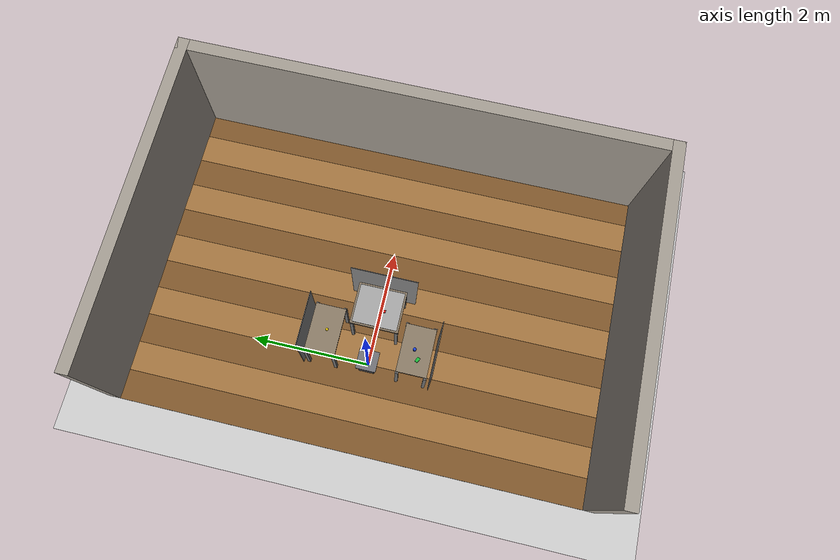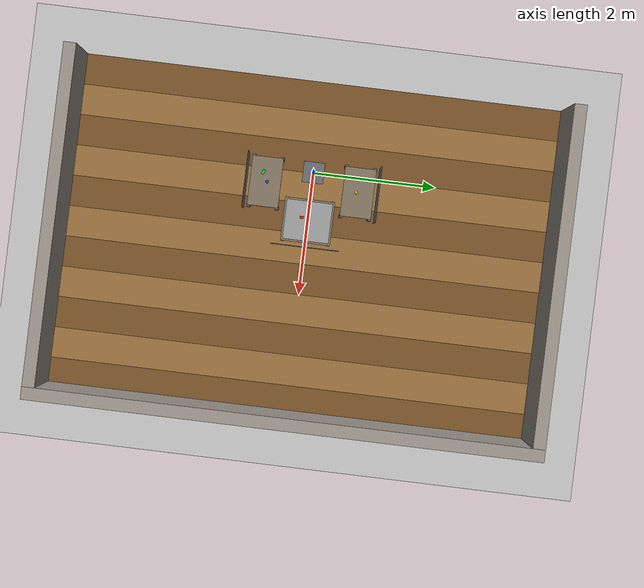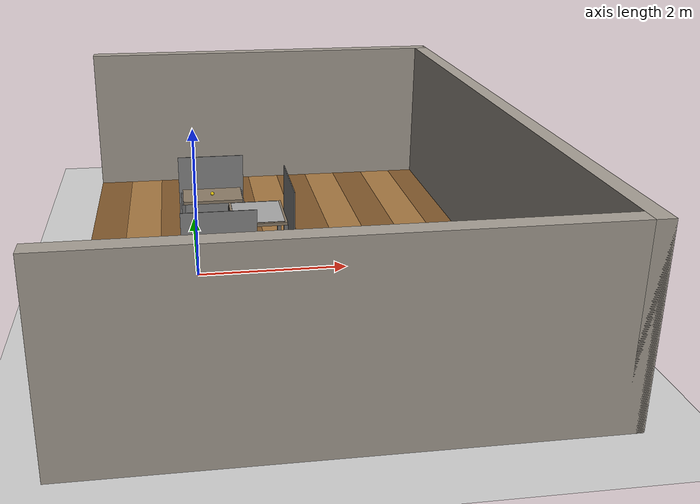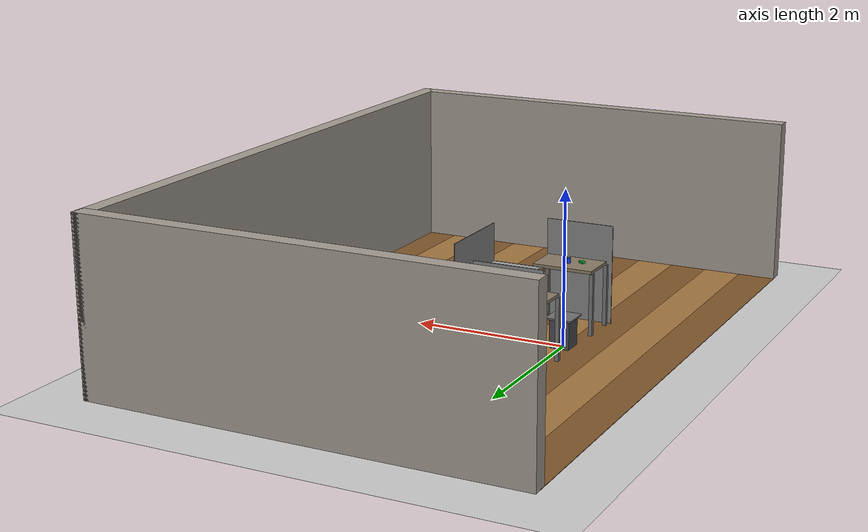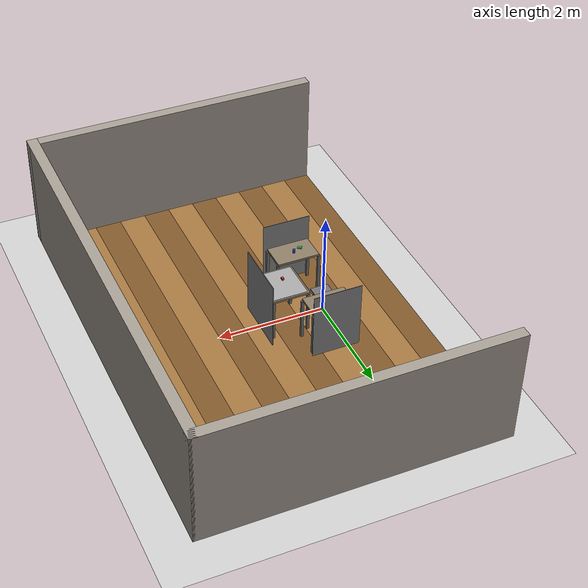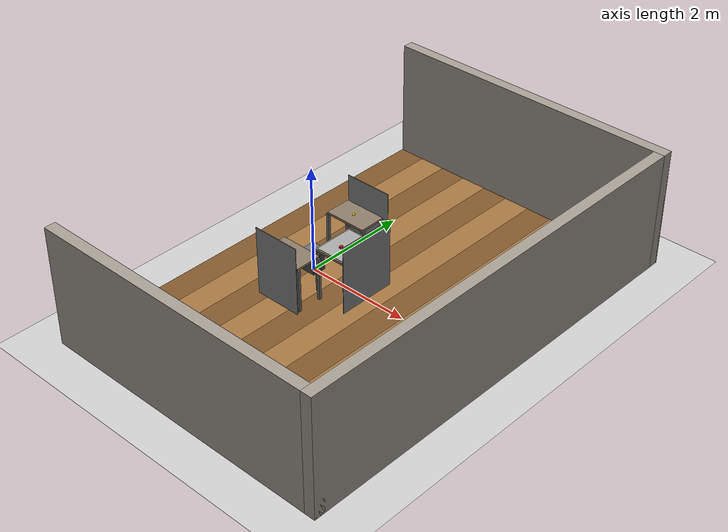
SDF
<?xml version="1.0" ?>
<sdf version="1.6">

  <world name="ibvs_tracking_test">

    <!-- ── 物理引擎 ─────────────────────────────────────────────────────── -->
    <physics type="ode">
      <real_time_update_rate>1000</real_time_update_rate>
      <max_step_size>0.001</max_step_size>
      <real_time_factor>1.0</real_time_factor>
      <ode>
        <solver>
          <type>quick</type>
          <iters>50</iters>
          <sor>1.3</sor>
        </solver>
        <constraints>
          <cfm>0</cfm>
          <erp>0.2</erp>
          <contact_max_correcting_vel>100</contact_max_correcting_vel>
          <contact_surface_layer>0.001</contact_surface_layer>
        </constraints>
      </ode>
    </physics>

    <!-- ── 初始视角（与 emeet_arm.world 一致）──────────────────────────── -->
    <gui fullscreen="0">
      <camera name="user_camera">
        <pose>-2.1 -2.5 2.0 0 0.38 0.62</pose>
        <view_controller>orbit</view_controller>
      </camera>
    </gui>

    <!-- ── 场景（与 emeet_arm.world 一致）──────────────────────────────── -->
    <scene>
      <shadows>false</shadows>
      <grid>false</grid>
      <ambient>0.50 0.50 0.50 1</ambient>
      <background>0.20 0.20 0.20 1</background>
    </scene>

    <!-- ── 地面（物理碰撞用，不可见）──────────────────────────────────── -->
    <include>
      <uri>model://ground_plane</uri>
    </include>

    <model name="wood_floor">
      <static>true</static>
      <link name="p0"><pose>-1.25 0 0.004 0 0 0</pose>
        <visual name="v"><geometry><box><size>0.50 8.0 0.008</size></box></geometry>
          <material><ambient>0.48 0.32 0.16 1</ambient><diffuse>0.50 0.34 0.17 1</diffuse><specular>0.15 0.10 0.06 25</specular></material>
        </visual>
      </link>
      <link name="p1"><pose>-0.75 0 0.004 0 0 0</pose>
        <visual name="v"><geometry><box><size>0.50 8.0 0.008</size></box></geometry>
          <material><ambient>0.62 0.44 0.24 1</ambient><diffuse>0.64 0.46 0.25 1</diffuse><specular>0.18 0.12 0.07 25</specular></material>
        </visual>
      </link>
      <link name="p2"><pose>-0.25 0 0.004 0 0 0</pose>
        <visual name="v"><geometry><box><size>0.50 8.0 0.008</size></box></geometry>
          <material><ambient>0.48 0.32 0.16 1</ambient><diffuse>0.50 0.34 0.17 1</diffuse><specular>0.15 0.10 0.06 25</specular></material>
        </visual>
      </link>
      <link name="p3"><pose>0.25 0 0.004 0 0 0</pose>
        <visual name="v"><geometry><box><size>0.50 8.0 0.008</size></box></geometry>
          <material><ambient>0.62 0.44 0.24 1</ambient><diffuse>0.64 0.46 0.25 1</diffuse><specular>0.18 0.12 0.07 25</specular></material>
        </visual>
      </link>
      <link name="p4"><pose>0.75 0 0.004 0 0 0</pose>
        <visual name="v"><geometry><box><size>0.50 8.0 0.008</size></box></geometry>
          <material><ambient>0.48 0.32 0.16 1</ambient><diffuse>0.50 0.34 0.17 1</diffuse><specular>0.15 0.10 0.06 25</specular></material>
        </visual>
      </link>
      <link name="p5"><pose>1.25 0 0.004 0 0 0</pose>
        <visual name="v"><geometry><box><size>0.50 8.0 0.008</size></box></geometry>
          <material><ambient>0.62 0.44 0.24 1</ambient><diffuse>0.64 0.46 0.25 1</diffuse><specular>0.18 0.12 0.07 25</specular></material>
        </visual>
      </link>
      <link name="p6"><pose>1.75 0 0.004 0 0 0</pose>
        <visual name="v"><geometry><box><size>0.50 8.0 0.008</size></box></geometry>
          <material><ambient>0.48 0.32 0.16 1</ambient><diffuse>0.50 0.34 0.17 1</diffuse><specular>0.15 0.10 0.06 25</specular></material>
        </visual>
      </link>
      <link name="p7"><pose>2.25 0 0.004 0 0 0</pose>
        <visual name="v"><geometry><box><size>0.50 8.0 0.008</size></box></geometry>
          <material><ambient>0.62 0.44 0.24 1</ambient><diffuse>0.64 0.46 0.25 1</diffuse><specular>0.18 0.12 0.07 25</specular></material>
        </visual>
      </link>
      <link name="p8"><pose>2.75 0 0.004 0 0 0</pose>
        <visual name="v"><geometry><box><size>0.50 8.0 0.008</size></box></geometry>
          <material><ambient>0.48 0.32 0.16 1</ambient><diffuse>0.50 0.34 0.17 1</diffuse><specular>0.15 0.10 0.06 25</specular></material>
        </visual>
      </link>
      <link name="p9"><pose>3.25 0 0.004 0 0 0</pose>
        <visual name="v"><geometry><box><size>0.50 8.0 0.008</size></box></geometry>
          <material><ambient>0.62 0.44 0.24 1</ambient><diffuse>0.64 0.46 0.25 1</diffuse><specular>0.18 0.12 0.07 25</specular></material>
        </visual>
      </link>
      <link name="p10"><pose>3.75 0 0.004 0 0 0</pose>
        <visual name="v"><geometry><box><size>0.50 8.0 0.008</size></box></geometry>
          <material><ambient>0.48 0.32 0.16 1</ambient><diffuse>0.50 0.34 0.17 1</diffuse><specular>0.15 0.10 0.06 25</specular></material>
        </visual>
      </link>
    </model>

    <!-- ── 主光源（与 emeet_arm.world 一致）────────────────────────────── -->
    <light type="directional" name="overhead_light">
      <pose>0.75 0 3.0 0 0.1 0</pose>
      <diffuse>0.92 0.92 0.88 1</diffuse>
      <specular>0.3 0.3 0.3 1</specular>
      <direction>0 0 -1</direction>
      <cast_shadows>false</cast_shadows>
    </light>

    <light type="point" name="fill_light">
      <pose>-0.3 0.5 1.2 0 0 0</pose>
      <diffuse>0.55 0.55 0.60 1</diffuse>
      <specular>0.1 0.1 0.1 1</specular>
      <attenuation>
        <range>5</range>
        <constant>0.3</constant>
        <linear>0.1</linear>
        <quadratic>0.01</quadratic>
      </attenuation>
      <cast_shadows>false</cast_shadows>
    </light>

    <!-- ── 机械臂垫高柱（40cm，对应 arm_sim.urdf.xacro 的 base_height=0.40）──
         与 emeet_arm.world 的 arm_riser 保持一致；每个 spawn 机械臂的世界都要有
         这块几何，否则机械臂会悬空 40cm。 -->
    <model name="arm_riser">
      <static>true</static>
      <link name="column"><pose>0 0 0.19 0 0 0</pose>
        <collision name="col"><geometry><box><size>0.26 0.26 0.38</size></box></geometry></collision>
        <visual name="vis"><geometry><box><size>0.26 0.26 0.38</size></box></geometry>
          <material><ambient>0.26 0.27 0.29 1</ambient><diffuse>0.28 0.29 0.31 1</diffuse><specular>0.10 0.10 0.12 15</specular></material>
        </visual>
      </link>
      <link name="top_plate"><pose>0 0 0.39 0 0 0</pose>
        <collision name="col"><geometry><box><size>0.34 0.34 0.02</size></box></geometry></collision>
        <visual name="vis"><geometry><box><size>0.34 0.34 0.02</size></box></geometry>
          <material><ambient>0.42 0.42 0.44 1</ambient><diffuse>0.44 0.44 0.46 1</diffuse><specular>0.15 0.15 0.16 25</specular></material>
        </visual>
      </link>
    </model>

    <model name="table_front">
      <static>true</static>
      <link name="surface">
        <pose>0.80 0 0.83 0 0 0</pose>
        <collision name="col">
          <geometry><box><size>0.70 0.80 0.04</size></box></geometry>
        </collision>
        <visual name="vis">
          <geometry><box><size>0.70 0.80 0.04</size></box></geometry>
          <material>
            <ambient>0.52 0.46 0.38 1</ambient>
            <diffuse>0.54 0.48 0.40 1</diffuse>
            <specular>0.06 0.05 0.04 8</specular>
          </material>
        </visual>
      </link>
      <link name="leg_fl"><pose>0.47 -0.37 0.405 0 0 0</pose>
        <collision name="col"><geometry><box><size>0.05 0.05 0.81</size></box></geometry></collision>
        <visual name="vis"><geometry><box><size>0.05 0.05 0.81</size></box></geometry>
          <material><ambient>0.45 0.45 0.45 1</ambient><diffuse>0.45 0.45 0.45 1</diffuse></material>
        </visual>
      </link>
      <link name="leg_fr"><pose>0.47  0.37 0.405 0 0 0</pose>
        <collision name="col"><geometry><box><size>0.05 0.05 0.81</size></box></geometry></collision>
        <visual name="vis"><geometry><box><size>0.05 0.05 0.81</size></box></geometry>
          <material><ambient>0.45 0.45 0.45 1</ambient><diffuse>0.45 0.45 0.45 1</diffuse></material>
        </visual>
      </link>
      <link name="leg_bl"><pose>1.13 -0.37 0.405 0 0 0</pose>
        <collision name="col"><geometry><box><size>0.05 0.05 0.81</size></box></geometry></collision>
        <visual name="vis"><geometry><box><size>0.05 0.05 0.81</size></box></geometry>
          <material><ambient>0.45 0.45 0.45 1</ambient><diffuse>0.45 0.45 0.45 1</diffuse></material>
        </visual>
      </link>
      <link name="leg_br"><pose>1.13  0.37 0.405 0 0 0</pose>
        <collision name="col"><geometry><box><size>0.05 0.05 0.81</size></box></geometry></collision>
        <visual name="vis"><geometry><box><size>0.05 0.05 0.81</size></box></geometry>
          <material><ambient>0.45 0.45 0.45 1</ambient><diffuse>0.45 0.45 0.45 1</diffuse></material>
        </visual>
      </link>
    </model>

    <!-- 前方桌面检测底板（浅灰，与 emeet_arm.world inspection_plate 一致）-->
    <model name="inspection_plate">
      <static>true</static>
      <pose>0.80 0 0.853 0 0 0</pose>
      <link name="link">
        <collision name="col">
          <geometry><box><size>0.64 0.74 0.005</size></box></geometry>
        </collision>
        <visual name="vis">
          <geometry><box><size>0.64 0.74 0.005</size></box></geometry>
          <material>
            <ambient>0.65 0.65 0.65 1</ambient>
            <diffuse>0.65 0.65 0.65 1</diffuse>
            <specular>0.03 0.03 0.03 5</specular>
          </material>
        </visual>
      </link>
    </model>

    <model name="table_left">
      <static>true</static>
      <link name="surface">
        <pose>0.25 -0.75 0.83 0 0 0</pose>
        <collision name="col">
          <geometry><box><size>0.80 0.50 0.04</size></box></geometry>
        </collision>
        <visual name="vis">
          <geometry><box><size>0.80 0.50 0.04</size></box></geometry>
          <material>
            <ambient>0.52 0.46 0.38 1</ambient>
            <diffuse>0.54 0.48 0.40 1</diffuse>
            <specular>0.06 0.05 0.04 8</specular>
          </material>
        </visual>
      </link>
      <link name="leg_fl"><pose>-0.15 -0.52 0.405 0 0 0</pose>
        <collision name="col"><geometry><box><size>0.05 0.05 0.81</size></box></geometry></collision>
        <visual name="vis"><geometry><box><size>0.05 0.05 0.81</size></box></geometry>
          <material><ambient>0.45 0.45 0.45 1</ambient><diffuse>0.45 0.45 0.45 1</diffuse></material>
        </visual>
      </link>
      <link name="leg_fr"><pose>-0.15 -0.98 0.405 0 0 0</pose>
        <collision name="col"><geometry><box><size>0.05 0.05 0.81</size></box></geometry></collision>
        <visual name="vis"><geometry><box><size>0.05 0.05 0.81</size></box></geometry>
          <material><ambient>0.45 0.45 0.45 1</ambient><diffuse>0.45 0.45 0.45 1</diffuse></material>
        </visual>
      </link>
      <link name="leg_bl"><pose>0.65 -0.52 0.405 0 0 0</pose>
        <collision name="col"><geometry><box><size>0.05 0.05 0.81</size></box></geometry></collision>
        <visual name="vis"><geometry><box><size>0.05 0.05 0.81</size></box></geometry>
          <material><ambient>0.45 0.45 0.45 1</ambient><diffuse>0.45 0.45 0.45 1</diffuse></material>
        </visual>
      </link>
      <link name="leg_br"><pose>0.65 -0.98 0.405 0 0 0</pose>
        <collision name="col"><geometry><box><size>0.05 0.05 0.81</size></box></geometry></collision>
        <visual name="vis"><geometry><box><size>0.05 0.05 0.81</size></box></geometry>
          <material><ambient>0.45 0.45 0.45 1</ambient><diffuse>0.45 0.45 0.45 1</diffuse></material>
        </visual>
      </link>
    </model>

    <model name="table_right">
      <static>true</static>
      <link name="surface">
        <pose>0.25 0.75 0.83 0 0 0</pose>
        <collision name="col">
          <geometry><box><size>0.80 0.50 0.04</size></box></geometry>
        </collision>
        <visual name="vis">
          <geometry><box><size>0.80 0.50 0.04</size></box></geometry>
          <material>
            <ambient>0.52 0.46 0.38 1</ambient>
            <diffuse>0.54 0.48 0.40 1</diffuse>
            <specular>0.06 0.05 0.04 8</specular>
          </material>
        </visual>
      </link>
      <link name="leg_fl"><pose>-0.15  0.52 0.405 0 0 0</pose>
        <collision name="col"><geometry><box><size>0.05 0.05 0.81</size></box></geometry></collision>
        <visual name="vis"><geometry><box><size>0.05 0.05 0.81</size></box></geometry>
          <material><ambient>0.45 0.45 0.45 1</ambient><diffuse>0.45 0.45 0.45 1</diffuse></material>
        </visual>
      </link>
      <link name="leg_fr"><pose>-0.15  0.98 0.405 0 0 0</pose>
        <collision name="col"><geometry><box><size>0.05 0.05 0.81</size></box></geometry></collision>
        <visual name="vis"><geometry><box><size>0.05 0.05 0.81</size></box></geometry>
          <material><ambient>0.45 0.45 0.45 1</ambient><diffuse>0.45 0.45 0.45 1</diffuse></material>
        </visual>
      </link>
      <link name="leg_bl"><pose>0.65  0.52 0.405 0 0 0</pose>
        <collision name="col"><geometry><box><size>0.05 0.05 0.81</size></box></geometry></collision>
        <visual name="vis"><geometry><box><size>0.05 0.05 0.81</size></box></geometry>
          <material><ambient>0.45 0.45 0.45 1</ambient><diffuse>0.45 0.45 0.45 1</diffuse></material>
        </visual>
      </link>
      <link name="leg_br"><pose>0.65  0.98 0.405 0 0 0</pose>
        <collision name="col"><geometry><box><size>0.05 0.05 0.81</size></box></geometry></collision>
        <visual name="vis"><geometry><box><size>0.05 0.05 0.81</size></box></geometry>
          <material><ambient>0.45 0.45 0.45 1</ambient><diffuse>0.45 0.45 0.45 1</diffuse></material>
        </visual>
      </link>
    </model>

    <model name="cloth_front">
      <static>true</static>
      <pose>1.22 0 0.65 0 0 0</pose>
      <link name="link">
        <collision name="col">
          <geometry><box><size>0.01 1.10 1.30</size></box></geometry>
        </collision>
        <visual name="vis">
          <geometry><box><size>0.01 1.10 1.30</size></box></geometry>
          <material>
            <ambient>0.52 0.52 0.52 1</ambient>
            <diffuse>0.52 0.52 0.52 1</diffuse>
            <specular>0.02 0.02 0.02 2</specular>
          </material>
        </visual>
      </link>
    </model>

    <model name="cloth_left">
      <static>true</static>
      <pose>0.25 -1.07 0.65 0 0 0</pose>
      <link name="link">
        <collision name="col">
          <geometry><box><size>0.90 0.01 1.30</size></box></geometry>
        </collision>
        <visual name="vis">
          <geometry><box><size>0.90 0.01 1.30</size></box></geometry>
          <material>
            <ambient>0.52 0.52 0.52 1</ambient>
            <diffuse>0.52 0.52 0.52 1</diffuse>
            <specular>0.02 0.02 0.02 2</specular>
          </material>
        </visual>
      </link>
    </model>

    <model name="cloth_right">
      <static>true</static>
      <pose>0.25 1.07 0.65 0 0 0</pose>
      <link name="link">
        <collision name="col">
          <geometry><box><size>0.90 0.01 1.30</size></box></geometry>
        </collision>
        <visual name="vis">
          <geometry><box><size>0.90 0.01 1.30</size></box></geometry>
          <material>
            <ambient>0.52 0.52 0.52 1</ambient>
            <diffuse>0.52 0.52 0.52 1</diffuse>
            <specular>0.02 0.02 0.02 2</specular>
          </material>
        </visual>
      </link>
    </model>

    <!-- ── 三面墙（与 emeet_arm.world 完全一致）────────────────────────── -->
    <model name="wall_back">
      <static>true</static>
      <link name="base"><pose>4.00 0 1.10 0 0 0</pose>
        <collision name="col"><geometry><box><size>0.20 8.20 2.20</size></box></geometry></collision>
        <visual name="vis"><geometry><box><size>0.20 8.20 2.20</size></box></geometry>
          <material><ambient>0.64 0.61 0.57 1</ambient><diffuse>0.64 0.61 0.57 1</diffuse><specular>0.08 0.08 0.07 10</specular></material></visual>
      </link>
    </model>

    <model name="wall_left">
      <static>true</static>
      <link name="base"><pose>1.30 -4.00 1.10 0 0 0</pose>
        <collision name="col"><geometry><box><size>5.60 0.20 2.20</size></box></geometry></collision>
        <visual name="vis"><geometry><box><size>5.60 0.20 2.20</size></box></geometry>
          <material><ambient>0.64 0.61 0.57 1</ambient><diffuse>0.64 0.61 0.57 1</diffuse><specular>0.08 0.08 0.07 10</specular></material></visual>
      </link>
    </model>

    <model name="wall_right">
      <static>true</static>
      <link name="base"><pose>1.30 4.00 1.10 0 0 0</pose>
        <collision name="col"><geometry><box><size>5.60 0.20 2.20</size></box></geometry></collision>
        <visual name="vis"><geometry><box><size>5.60 0.20 2.20</size></box></geometry>
          <material><ambient>0.64 0.61 0.57 1</ambient><diffuse>0.64 0.61 0.57 1</diffuse><specular>0.08 0.08 0.07 10</specular></material></visual>
      </link>
    </model>

    <!-- ── 陪衬物体（左侧桌：蓝圆柱 + 绿方块；右侧桌：黄球）────────────
         z 取桌面顶端 0.45 + 物体半高
    ──────────────────────────────────────────────────────────────────── -->
    <model name="obj_cylinder_blue">
      <static>false</static>
      <pose>0.25 -0.72 0.885 0 0 0</pose>
      <link name="link">
        <inertial><mass>0.15</mass>
          <inertia><ixx>1e-4</ixx><iyy>1e-4</iyy><izz>5e-5</izz></inertia>
        </inertial>
        <collision name="col"><geometry><cylinder><radius>0.025</radius><length>0.07</length></cylinder></geometry></collision>
        <visual name="vis">
          <geometry><cylinder><radius>0.025</radius><length>0.07</length></cylinder></geometry>
          <material>
            <ambient>0.10 0.25 0.85 1</ambient>
            <diffuse>0.10 0.25 0.85 1</diffuse>
            <specular>0.4 0.4 0.7 40</specular>
          </material>
        </visual>
      </link>
    </model>

    <model name="obj_box_green">
      <static>false</static>
      <pose>0.10 -0.80 0.8625 0 0 -0.5</pose>
      <link name="link">
        <inertial><mass>0.08</mass>
          <inertia><ixx>5e-5</ixx><iyy>5e-5</iyy><izz>5e-5</izz></inertia>
        </inertial>
        <collision name="col"><geometry><box><size>0.08 0.05 0.025</size></box></geometry></collision>
        <visual name="vis">
          <geometry><box><size>0.08 0.05 0.025</size></box></geometry>
          <material>
            <ambient>0.10 0.72 0.22 1</ambient>
            <diffuse>0.10 0.72 0.22 1</diffuse>
            <specular>0.2 0.4 0.2 15</specular>
          </material>
        </visual>
      </link>
    </model>

    <model name="obj_sphere_yellow">
      <static>false</static>
      <pose>0.25 0.72 0.875 0 0 0</pose>
      <link name="link">
        <inertial><mass>0.05</mass>
          <inertia><ixx>2e-5</ixx><iyy>2e-5</iyy><izz>2e-5</izz></inertia>
        </inertial>
        <collision name="col"><geometry><sphere><radius>0.025</radius></sphere></geometry></collision>
        <visual name="vis">
          <geometry><sphere><radius>0.025</radius></sphere></geometry>
          <material>
            <ambient>0.95 0.82 0.05 1</ambient>
            <diffuse>0.95 0.82 0.05 1</diffuse>
            <specular>0.5 0.5 0.1 50</specular>
          </material>
        </visual>
      </link>
    </model>

    <model name="obj_box_red">
      <static>false</static>
      <pose>0.75 -0.10 0.87 0 0 -1.5708</pose>
      <link name="link">
        <inertial>
          <mass>0.1</mass>
          <inertia><ixx>1e-4</ixx><iyy>1e-4</iyy><izz>1e-4</izz></inertia>
        </inertial>
        <collision name="col">
          <geometry><box><size>0.06 0.04 0.04</size></box></geometry>
        </collision>
        <visual name="vis">
          <geometry><box><size>0.06 0.04 0.04</size></box></geometry>
          <material>
            <ambient>0.85 0.12 0.10 1</ambient>
            <diffuse>0.85 0.12 0.10 1</diffuse>
            <specular>0.3 0.1 0.1 20</specular>
          </material>
        </visual>
      </link>
      <plugin name="box_circle_mover" filename="libgazebo_ros_planar_move.so">
        <ros>
          <namespace>/red_box</namespace>
        </ros>
        <update_rate>20</update_rate>
        <publish_odom>false</publish_odom>
        <publish_odom_tf>false</publish_odom_tf>
      </plugin>
    </model>

  </world>
</sdf>
